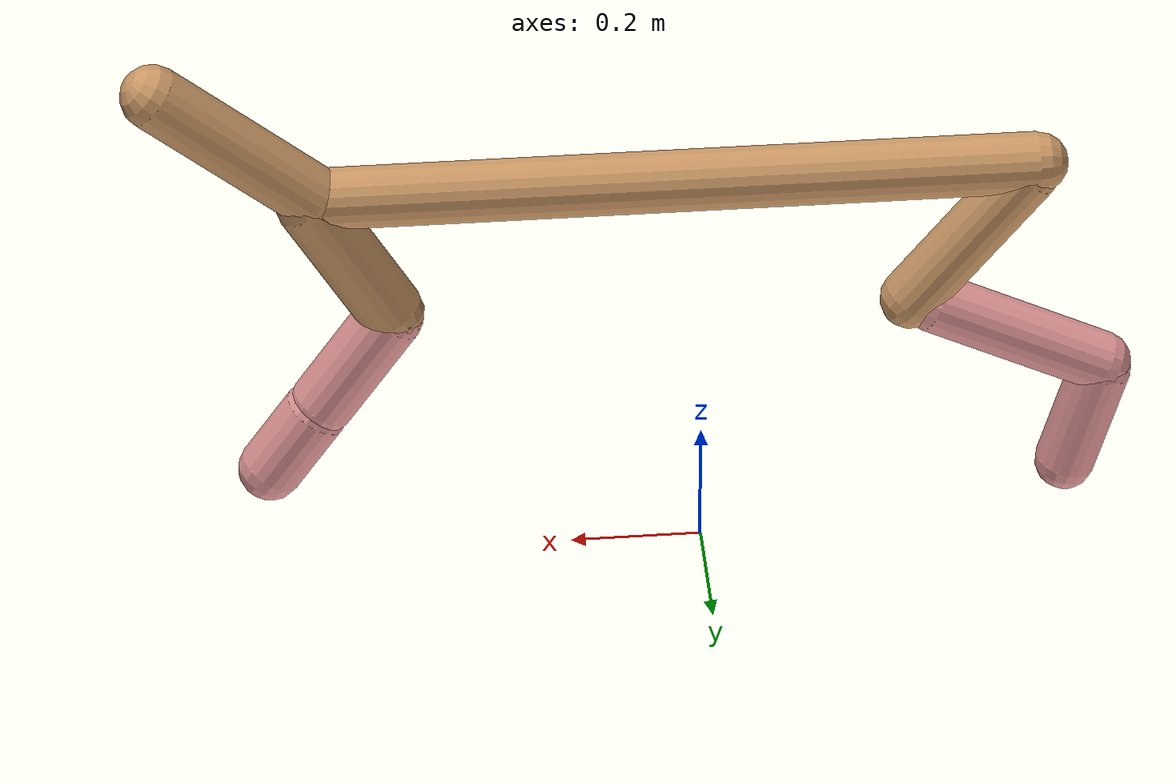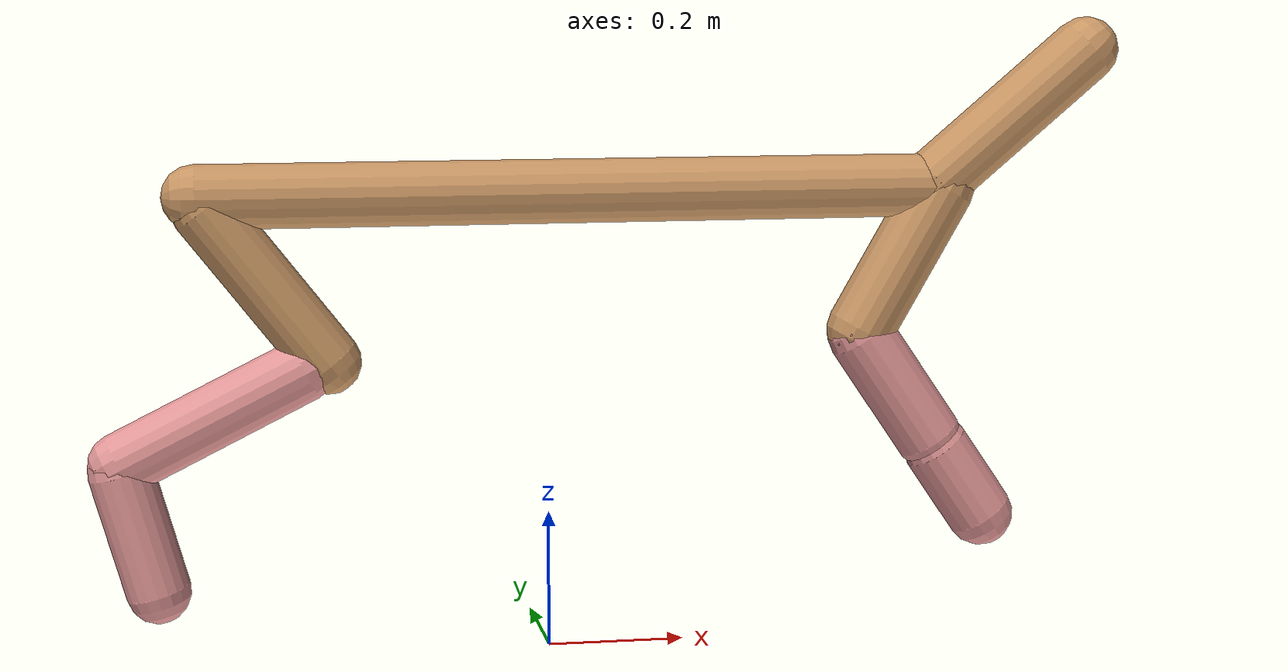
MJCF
<mujoco model="cheetah">
  <compiler angle="radian" coordinate="local" inertiafromgeom="true" settotalmass="14" />
  <default>
    <joint armature=".1" damping=".01" limited="true" solimplimit="0 .8 .03" solreflimit=".02 1" stiffness="8" />
    <geom conaffinity="0" condim="3" contype="1" friction="0.8 .1 .1" rgba="0.8 0.6 .4 1" solimp="0.0 0.8 0.01" solref="0.02 1" />
    <motor ctrllimited="true" ctrlrange="-1 1" />
  </default>
  <size nstack="300000" nuser_geom="1" />
  <option gravity="0 0 -9.81" timestep="0.01" />
  <worldbody>
    <body name="torso" pos="0.0 0.0 0.671242786049997">
      <joint armature="0" axis="1 0 0" damping="0" limited="false" name="ignorex" pos="0 0 0" stiffness="0" type="slide" />
      <joint armature="0" axis="0 0 1" damping="0" limited="false" name="ignorez" pos="0 0 0" stiffness="0" type="slide" />
      <joint armature="0" axis="0 1 0" damping="0" limited="false" name="ignorey" pos="0 0 0" stiffness="0" type="hinge" />
      <geom fromto="-0.5 0.0 0.0 0.5901102719293013 0.0 0.0" name="torso" size="0.046269908124121434" type="capsule" />
      <geom axisangle="0 1 0 .87" name="head" pos="0.6901102719293014 0.0 0.1" size="0.04864390216384758 0.15" type="capsule" />

      <body name="bthigh" pos="-.5 0 0">
        <joint axis="0 1 0" damping="6" name="bthigh" pos="0 0 0" range="-.52 1.05" stiffness="240" type="hinge" />
        <geom axisangle="0 1 0 -3.8" name="bthigh" pos="0.09784544957150917 0.0 -0.1271990844429619" size="0.04639109738381564 0.14146627455699115" type="capsule" />
        <body name="bshin" pos="0.15569089914301834 0.0 -0.24439816888592383">
          <joint axis="0 1 0" damping="4.5" name="bshin" pos="0 0 0" range="-.785 .785" stiffness="180" type="hinge" />
          <geom axisangle="0 1 0 -2.03" name="bshin" pos="-0.13673035159818417 0.0 -0.06836517579909208" rgba="0.9 0.6 0.6 1" size="0.04639109738381564 0.1463444219555081" type="capsule" />
          <body name="bfoot" pos="-0.27346070319636834 0.0 -0.13673035159818417">
            <joint axis="0 1 0" damping="3" name="bfoot" pos="0 0 0" range="-.4 .785" stiffness="120" type="hinge" />
            <geom axisangle="0 1 0 -.27" name="bfoot" pos="0.02932312941732636 0.0 -0.09481145178268857" rgba="0.9 0.6 0.6 1" size="0.04639109738381564 0.0917091710921184" type="capsule" />
            <inertial mass="10" />
          </body>
        </body>
      </body>
      <body name="fthigh" pos="0.5901102719293014 0.0 0.0">
        <joint axis="0 1 0" damping="4.5" name="fthigh" pos="0 0 0" range="-1.5 0.8" stiffness="180" type="hinge" />
        <geom axisangle="0 1 0 .52" name="fthigh" pos="-0.0634825744267036 0.0 -0.1088272704457776" size="0.04972944746529376 0.12006529003822458" type="capsule" />
        <body name="fshin" pos="-0.1269651488534072 0.0 -0.2176545408915552">
          <joint axis="0 1 0" damping="3" name="fshin" pos="0 0 0" range="-1.2 1.1" stiffness="120" type="hinge" />
          <geom axisangle="0 1 0 -.6" name="fshin" pos="0.05896425599301038 0.0 -0.08164281599032205" rgba="0.9 0.6 0.6 1" size="0.04972944746529376 0.09569113341392334" type="capsule" />
          <body name="ffoot" pos="0.11792851198602076 0.0 -0.1632856319806441">
            <joint axis="0 1 0" damping="1.5" name="ffoot" pos="0 0 0" range="-3.1 -0.3" stiffness="60" type="hinge" />
            <geom axisangle="0 1 0 -.6" name="ffoot" pos="0.04131866178775347 0.0 -0.06427347389206096" rgba="0.9 0.6 0.6 1" size="0.04972944746529376 0.06319225791485504" type="capsule" />
            <inertial mass="10" />
          </body>
        </body>
      </body>
    </body>
  </worldbody>
  <actuator>
    <motor gear="120" joint="bthigh" name="bthigh" />
    <motor gear="90" joint="bshin" name="bshin" />
    <motor gear="60" joint="bfoot" name="bfoot" />
    <motor gear="120" joint="fthigh" name="fthigh" />
    <motor gear="60" joint="fshin" name="fshin" />
    <motor gear="30" joint="ffoot" name="ffoot" />
  </actuator>
</mujoco>
